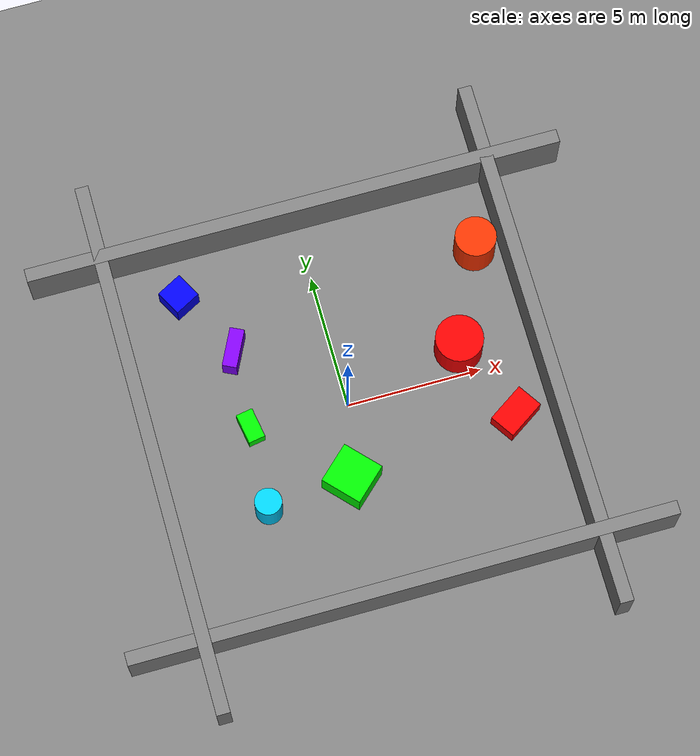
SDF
<sdf version="1.8">
 <world name="random_world_humans">
  <physics name="1ms" type="ignored">
   <max_step_size>0.002</max_step_size>
   <real_time_update_rate>200</real_time_update_rate>
  </physics>
  <plugin filename="ignition-gazebo-physics-system" name="ignition::gazebo::systems::Physics">
   <include_entity_names>true</include_entity_names>
  </plugin>
  <plugin filename="ignition-gazebo-sensors-system" name="ignition::gazebo::systems::Sensors">
   <render_engine>ogre2</render_engine>
  </plugin>
  <plugin filename="ignition-gazebo-user-commands-system" name="ignition::gazebo::systems::UserCommands"/>
  <plugin filename="libignition-gazebo-contact-system.so" name="ignition::gazebo::systems::Contact">
   <topic>/world/random_world_humans/physics/contacts</topic>
  </plugin>
  <plugin filename="ignition-gazebo-scene-broadcaster-system" name="ignition::gazebo::systems::SceneBroadcaster"/>
  <light name="sun" type="directional">
   <pose>0 0 10 0 -0 0</pose>
   <intensity>1</intensity>
   <direction>-0.5 0.5 -1</direction>
   <diffuse>1 1 1 1</diffuse>
   <specular>0.1 0.1 0.1 1</specular>
   <attenuation><range>10</range><linear>1</linear><constant>1</constant><quadratic>0</quadratic></attenuation>
  </light>
  <model name="ground_plane">
   <static>true</static>
   <link name="link">
    <collision name="collision">
     <geometry><plane><normal>0 0 1</normal><size>50 50</size></plane></geometry>
    </collision>
    <visual name="visual">
     <geometry><plane><normal>0 0 1</normal><size>50 50</size></plane></geometry>
     <material><ambient>0.5 0.5 0.5 1</ambient><diffuse>0.5 0.5 0.5 1</diffuse></material>
    </visual>
   </link>
  </model>
  <model name="north_wall">
   <pose>0 7.25 1.0 0 0 0</pose>
   <link name="link">
    <collision name="collision"><geometry><box><size>20 0.5 2.0</size></box></geometry></collision>
    <visual name="visual">
     <geometry><box><size>20 0.5 2.0</size></box></geometry>
     <material><ambient>0.5 0.5 0.5 1</ambient><diffuse>0.5 0.5 0.5 1</diffuse></material>
    </visual>
   </link>
   <static>true</static>
  </model>
  <model name="south_wall">
   <pose>0 -7.25 1.0 0 0 0</pose>
   <link name="link">
    <collision name="collision"><geometry><box><size>20 0.5 2.0</size></box></geometry></collision>
    <visual name="visual">
     <geometry><box><size>20 0.5 2.0</size></box></geometry>
     <material><ambient>0.5 0.5 0.5 1</ambient><diffuse>0.5 0.5 0.5 1</diffuse></material>
    </visual>
   </link>
   <static>true</static>
  </model>
  <model name="east_wall">
   <pose>7.25 0 1.0 0 0 0</pose>
   <link name="link">
    <collision name="collision"><geometry><box><size>0.5 20 2.0</size></box></geometry></collision>
    <visual name="visual">
     <geometry><box><size>0.5 20 2.0</size></box></geometry>
     <material><ambient>0.5 0.5 0.5 1</ambient><diffuse>0.5 0.5 0.5 1</diffuse></material>
    </visual>
   </link>
   <static>true</static>
  </model>
  <model name="west_wall">
   <pose>-7.25 0 1.0 0 0 0</pose>
   <link name="link">
    <collision name="collision"><geometry><box><size>0.5 20 2.0</size></box></geometry></collision>
    <visual name="visual">
     <geometry><box><size>0.5 20 2.0</size></box></geometry>
     <material><ambient>0.5 0.5 0.5 1</ambient><diffuse>0.5 0.5 0.5 1</diffuse></material>
    </visual>
   </link>
   <static>true</static>
  </model>
  <model name="box0">
   <pose>-3.4711753276613644 2.9655523441136538 0.45627198877683944 0 0 4.251828276751594</pose>
   <link name="link">
    <collision name="collision">
     <geometry><box><size>1.4591401976868257 0.5375161328340003 0.9125439775536789</size></box></geometry>
    </collision>
    <visual name="visual">
     <geometry><box><size>1.4591401976868257 0.5375161328340003 0.9125439775536789</size></box></geometry>
     <material><ambient>0.5 0.0 1.0 1</ambient><diffuse>0.5 0.0 1.0 1</diffuse></material>
    </visual>
   </link>
   <static>true</static>
  </model>
  <model name="box1">
   <pose>-3.6203181736595598 0.06890712004312771 0.2723479145785528 0 0 0.16673041482941486</pose>
   <link name="link">
    <collision name="collision">
     <geometry><box><size>0.6304082489441243 1.1328827295279056 0.5446958291571056</size></box></geometry>
    </collision>
    <visual name="visual">
     <geometry><box><size>0.6304082489441243 1.1328827295279056 0.5446958291571056</size></box></geometry>
     <material><ambient>0.0 1.0 0.0 1</ambient><diffuse>0.0 1.0 0.0 1</diffuse></material>
    </visual>
   </link>
   <static>true</static>
  </model>
  <model name="box2">
   <pose>-0.6311268966382837 -2.7561957340331436 0.564639865721244 0 0 5.461975003132664</pose>
   <link name="link">
    <collision name="collision">
     <geometry><box><size>1.574029419383605 1.5519874603853538 1.129279731442488</size></box></geometry>
    </collision>
    <visual name="visual">
     <geometry><box><size>1.574029419383605 1.5519874603853538 1.129279731442488</size></box></geometry>
     <material><ambient>0.0 1.0 0.0 1</ambient><diffuse>0.0 1.0 0.0 1</diffuse></material>
    </visual>
   </link>
   <static>true</static>
  </model>
  <model name="box3">
   <pose>5.69357878837482 -2.034853962860269 0.3666096248588362 0 0 0.5827393204281245</pose>
   <link name="link">
    <collision name="collision">
     <geometry><box><size>1.5472090924823403 1.0103757747769877 0.7332192497176724</size></box></geometry>
    </collision>
    <visual name="visual">
     <geometry><box><size>1.5472090924823403 1.0103757747769877 0.7332192497176724</size></box></geometry>
     <material><ambient>1.0 0.0 0.0 1</ambient><diffuse>1.0 0.0 0.0 1</diffuse></material>
    </visual>
   </link>
   <static>true</static>
  </model>
  <model name="box4">
   <pose>-4.862827294032179 5.473594525831867 0.44839065041650983 0 0 0.49511624676940946</pose>
   <link name="link">
    <collision name="collision">
     <geometry><box><size>1.0384690707269426 1.0159335837184567 0.8967813008330197</size></box></geometry>
    </collision>
    <visual name="visual">
     <geometry><box><size>1.0384690707269426 1.0159335837184567 0.8967813008330197</size></box></geometry>
     <material><ambient>0.0 0.0 1.0 1</ambient><diffuse>0.0 0.0 1.0 1</diffuse></material>
    </visual>
   </link>
   <static>true</static>
  </model>
  <model name="cylinder0">
   <pose>4.4268705178700625 0.9467000243483046 0.7138898142731845 0 0 4.426955409158149</pose>
   <link name="link">
    <collision name="collision">
     <geometry>
      <cylinder><radius>0.8805832649770964</radius><length>1.427779628546369</length></cylinder>
     </geometry>
    </collision>
    <visual name="visual">
     <geometry>
      <cylinder><radius>0.8805832649770964</radius><length>1.427779628546369</length></cylinder>
     </geometry>
     <material><ambient>1.0 0.0 0.0 1</ambient><diffuse>1.0 0.0 0.0 1</diffuse></material>
    </visual>
   </link>
   <static>true</static>
  </model>
  <model name="cylinder1">
   <pose>6.0527655066645085 4.43231545612082 0.829801255591519 0 0 5.444277443867803</pose>
   <link name="link">
    <collision name="collision">
     <geometry>
      <cylinder><radius>0.7628843229973971</radius><length>1.659602511183038</length></cylinder>
     </geometry>
    </collision>
    <visual name="visual">
     <geometry>
      <cylinder><radius>0.7628843229973971</radius><length>1.659602511183038</length></cylinder>
     </geometry>
     <material><ambient>1.0 0.2 0.0 1</ambient><diffuse>1.0 0.2 0.0 1</diffuse></material>
    </visual>
   </link>
   <static>true</static>
  </model>
  <model name="cylinder2">
   <pose>-3.7795566593936267 -3.0318135643684845 0.7267633331983001 0 0 5.8851743434174955</pose>
   <link name="link">
    <collision name="collision">
     <geometry>
      <cylinder><radius>0.49458152217706447</radius><length>1.4535266663966002</length></cylinder>
     </geometry>
    </collision>
    <visual name="visual">
     <geometry>
      <cylinder><radius>0.49458152217706447</radius><length>1.4535266663966002</length></cylinder>
     </geometry>
     <material><ambient>0.0 0.8 1.0 1</ambient><diffuse>0.0 0.8 1.0 1</diffuse></material>
    </visual>
   </link>
   <static>true</static>
  </model>
 </world>
</sdf>
